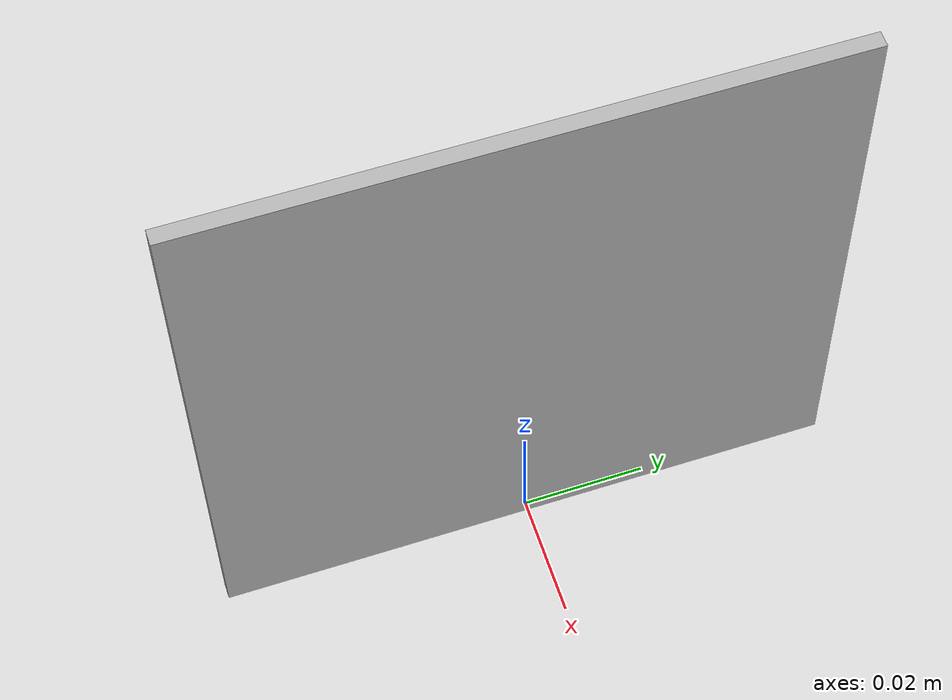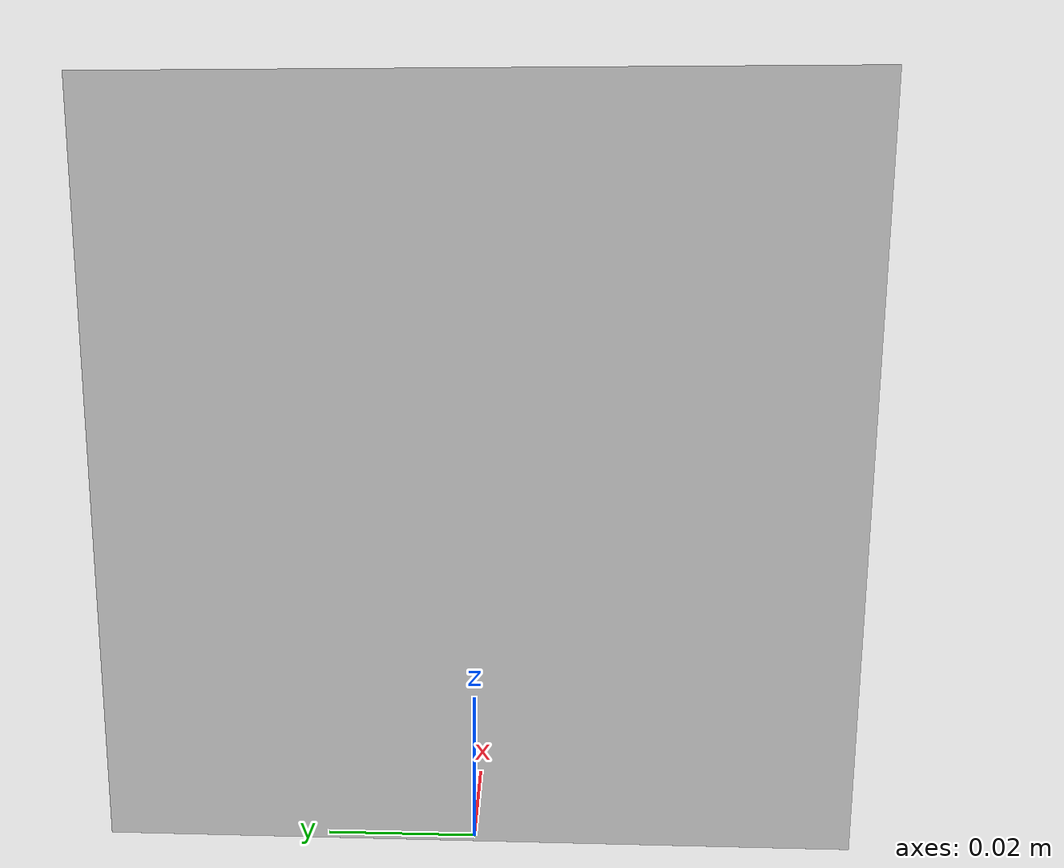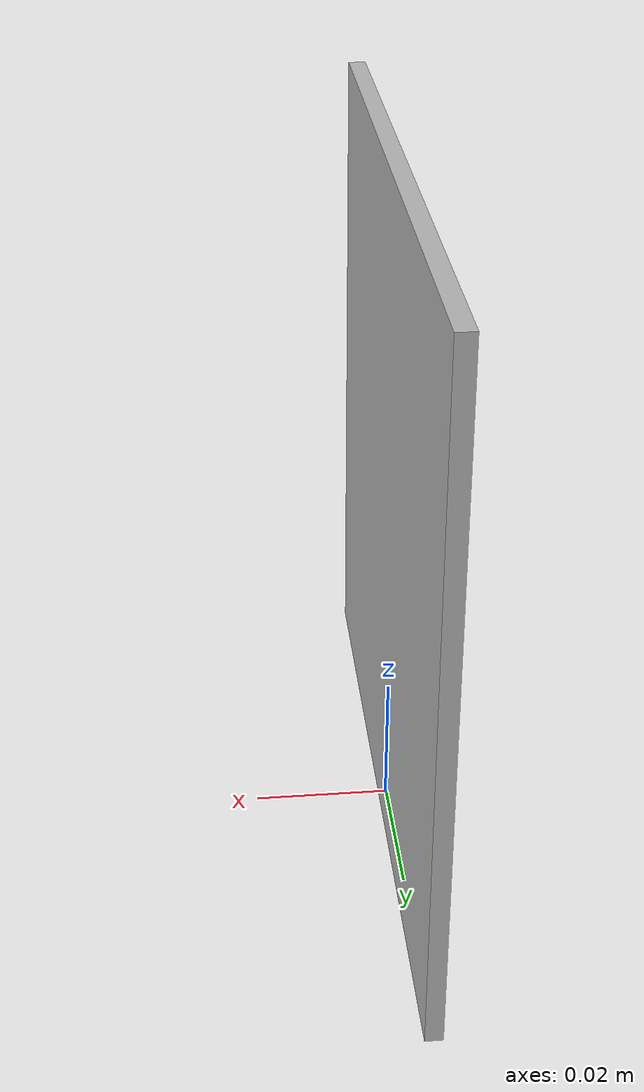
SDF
<?xml version="1.0" ?><sdf version="1.6">
  <model name="tag_14">
    <static>true</static>
    <link name="link">
      <visual name="visual">
        <geometry>
          <mesh>
            <uri>tag.dae</uri>
          <scale>0.5 0.5 0.5</scale></mesh>
        </geometry>
      </visual>
    </link>
  </model>
</sdf>
